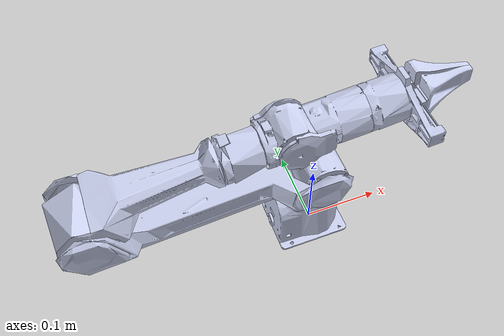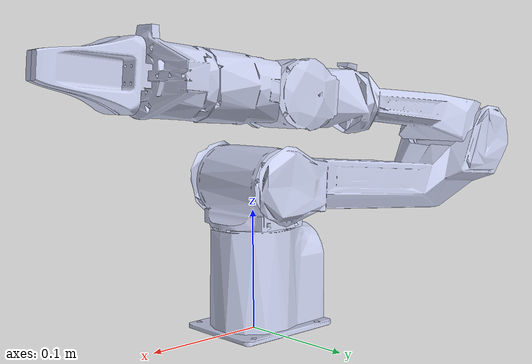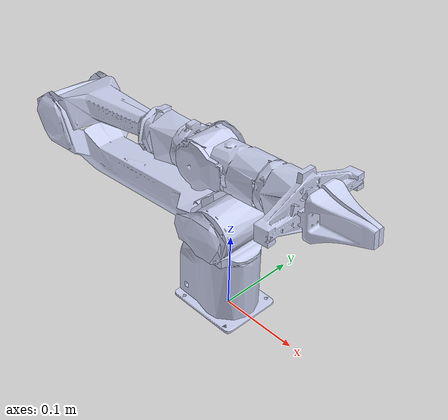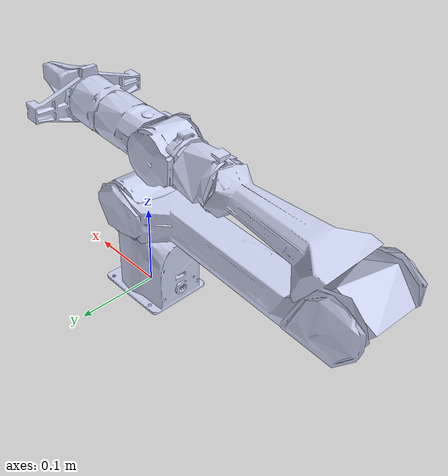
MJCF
<mujoco model="piper_description">
    <compiler angle="radian" />
    <size njmax="500" nconmax="100" />
    <asset>
        <mesh name="base_link" file="../meshes/base_link.STL" />
        <mesh name="link1" file="../meshes/link1.STL" />
        <mesh name="link2" file="../meshes/link2.STL" />
        <mesh name="link3" file="../meshes/link3.STL" />
        <mesh name="link4" file="../meshes/link4.STL" />
        <mesh name="link5" file="../meshes/link5.STL" />
        <mesh name="link6" file="../meshes/link6.STL" />
        <mesh name="gripper_base" file="../meshes/gripper_base.STL" />
        <mesh name="link7" file="../meshes/link7.STL" />
        <mesh name="link8" file="../meshes/link8.STL" />
    </asset>
    <worldbody>
        <geom type="mesh" rgba="0.792157 0.819608 0.933333 1" mesh="base_link" />
        <body name="link1" pos="0 0 0.123">
            <inertial pos="0.000121505 0.000104632 -0.00438597" quat="0.486797 0.49897 -0.50059 0.513292" mass="0.215052" diaginertia="0.000116369 0.00010964 9.9555e-05" />
            <joint name="joint1" pos="0 0 0" axis="0 0 1" limited="true" range="-2.618 2.168" damping="300"/>
            <geom type="mesh" rgba="0.792157 0.819608 0.933333 1" mesh="link1" />
            <body name="link2" pos="0 0 0" quat="0.0356735 -0.0356786 -0.706207 -0.706205">
                <inertial pos="0.198666 -0.0109269 0.00142122" quat="0.0189031 0.705267 -0.0456298 0.707219" mass="0.463914" diaginertia="0.00104423 0.0010069 0.000207486" />
                <joint name="joint2" pos="0 0 0" axis="0 0 1" limited="true" range="0 3.14" damping="100"/>
                <geom type="mesh" rgba="0.792157 0.819608 0.933333 1" mesh="link2" />
                <body name="link3" pos="0.28503 0 0" quat="0.637536 0 0 -0.77042">
                    <inertial pos="-0.0202738 -0.133915 -0.000458683" quat="0.528127 0.491307 -0.505056 0.473938" mass="0.219942" diaginertia="0.000201238 0.000190068 7.08709e-05" />
                    <joint name="joint3" pos="0 0 0" axis="0 0 1" limited="true" range="-2.967 0" damping="20"/>
                    <geom type="mesh" rgba="0.792157 0.819608 0.933333 1" mesh="link3" />
                    <body name="link4" pos="-0.021984 -0.25075 0" quat="0.707105 0.707108 0 0">
                        <inertial pos="-9.66636e-05 0.000876064 -0.00496881" quat="0.512749 0.48584 0.481646 0.518714" mass="0.131814" diaginertia="5.1333e-05 4.14831e-05 3.96892e-05" />
                        <joint name="joint4" pos="0 0 0" axis="0 0 1" limited="true" range="-1.745 1.745" damping="5"/>
                        <geom type="mesh" rgba="0.792157 0.819608 0.933333 1" mesh="link4" />
                        <body name="link5" pos="0 0 0" quat="0.707105 -0.707108 0 0">
                            <inertial pos="-4.10554e-05 -0.0566487 -0.00372058" quat="0.492375 0.506639 0.49332 0.507463" mass="0.134101" diaginertia="5.27778e-05 4.60364e-05 4.10994e-05" />
                            <joint name="joint5" pos="0 0 0" axis="0 0 1" limited="true" range="-1.22 1.22" damping="2"/>
                            <geom type="mesh" rgba="0.792157 0.819608 0.933333 1" mesh="link5" />
                            <body name="link6" pos="8.8259e-05 -0.091 0" quat="0.707105 0.707108 0 0">
                                <inertial pos="-0.000179422 7.72241e-05 0.0305765" quat="0.498967 0.497649 -0.502223 0.501147" mass="0.152309" diaginertia="0.000119759 0.000110059 4.99704e-05" />
                                <joint name="joint6" pos="0 0 0" axis="0 0 1" limited="true" range="-2.0944 2.0944" damping="0.1"/>
                                <geom type="mesh" rgba="0.898039 0.917647 0.929412 1" mesh="link6" />
                                <geom type="mesh" rgba="0.792157 0.819608 0.933333 1" mesh="gripper_base" />
                                <body name="link7" pos="0 0 0.1358" quat="0.707105 0.707108 0 0">
                                    <inertial pos="0.000651232 -0.049193 0.00972259" quat="0.519774 0.479905 -0.436488 0.555881" mass="0.0303535" diaginertia="1.60353e-05 1.14217e-05 5.97329e-06" />
                                    <joint name="joint7" pos="0 0 0" axis="0 0 1" type="slide" limited="true" range="0 0.035" damping="100"/>
                                    <geom type="mesh" rgba="0.792157 0.819608 0.933333 1" mesh="link7" />
                                </body>
                                <body name="link8" pos="0 0 0.1358" quat="-2.59734e-06 -2.59735e-06 -0.707108 -0.707105">
                                    <inertial pos="0.000651232 -0.049193 0.00972259" quat="0.519774 0.479905 -0.436488 0.555881" mass="0.0303535" diaginertia="1.60353e-05 1.14217e-05 5.97329e-06" />
                                    <joint name="joint8" pos="0 0 0" axis="0 0 -1" type="slide" limited="true" range="-0.035 0" damping="100"/>
                                    <geom type="mesh" rgba="0.792157 0.819608 0.933333 1" mesh="link8" />
                                </body>
                            </body>
                        </body>
                    </body>
                </body>
            </body>
        </body>
    </worldbody>

    <actuator>
        <position name="joint1" ctrllimited="true" ctrlrange="-2.618 2.618" joint="joint1" kp="10000" user="1" forcelimited="true" forcerange="-20000 20000"/>
        <position name="joint2" ctrllimited="true" ctrlrange="0 3.14158" joint="joint2" kp="2000" user="1" forcelimited="true" forcerange="-20000 20000"/>
        <position name="joint3" ctrllimited="true" ctrlrange="-2.697 0" joint="joint3" kp="500" user="1" forcelimited="true" forcerange="-1000 1000"/>
        <position name="joint4" ctrllimited="true" ctrlrange="-1.832 1.832" joint="joint4" kp="50" user="1" forcelimited="true" forcerange="-70 70"/>
        <position name="joint5" ctrllimited="true" ctrlrange="-1.22 1.22" joint="joint5" kp="20" user="1" forcelimited="true" forcerange="-50 50"/>
        <position name="joint6" ctrllimited="true" ctrlrange="-3.14158 3.14158" joint="joint6" kp="5" user="1" forcelimited="true" forcerange="-6 6"/>
        <position name="joint7" ctrllimited="true" ctrlrange="0 0.0475" joint="joint7" kp="10000" user="1" forcelimited="true" forcerange="-100 100"/>
        <position name="joint8" ctrllimited="true" ctrlrange="-0.0475 0" joint="joint8" kp="10000" user="1" forcelimited="true" forcerange="-100 100"/>
    </actuator>

    <sensor>
        <jointpos name="joint1_pos" joint="joint1" />
        <jointpos name="joint2_pos" joint="joint2" />
        <jointpos name="joint3_pos" joint="joint3" />
        <jointpos name="joint4_pos" joint="joint4" />
        <jointpos name="joint5_pos" joint="joint5" />
        <jointpos name="joint6_pos" joint="joint6" />
        <jointpos name="joint7_pos" joint="joint7" />
        <jointpos name="joint8_pos" joint="joint8" />

        <jointvel name="joint1_vel" joint="joint1" />
        <jointvel name="joint2_vel" joint="joint2" />
        <jointvel name="joint3_vel" joint="joint3" />
        <jointvel name="joint4_vel" joint="joint4" />
        <jointvel name="joint5_vel" joint="joint5" />
        <jointvel name="joint6_vel" joint="joint6" />
        <jointvel name="joint7_vel" joint="joint7" />
        <jointvel name="joint8_vel" joint="joint8" />

        <jointactuatorfrc name="joint1_torque" joint="joint1" noise="0.01" />
        <jointactuatorfrc name="joint2_torque" joint="joint2" noise="0.01" />
        <jointactuatorfrc name="joint3_torque" joint="joint3" noise="0.01" />
        <jointactuatorfrc name="joint4_torque" joint="joint4" noise="0.01" />
        <jointactuatorfrc name="joint5_torque" joint="joint5" noise="0.01" />
        <jointactuatorfrc name="joint6_torque" joint="joint6" noise="0.01" />
        <jointactuatorfrc name="joint7_torque" joint="joint7" noise="0.01" />
        <jointactuatorfrc name="joint8_torque" joint="joint8" noise="0.01" />
    </sensor>
</mujoco>
